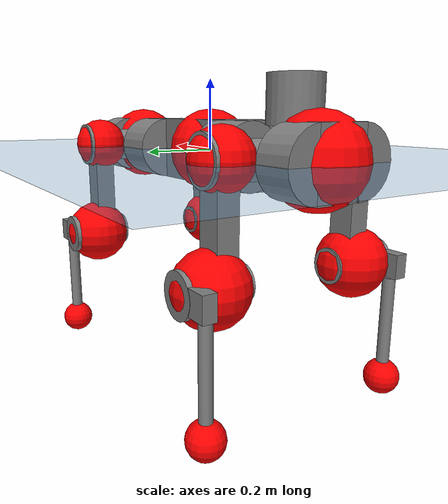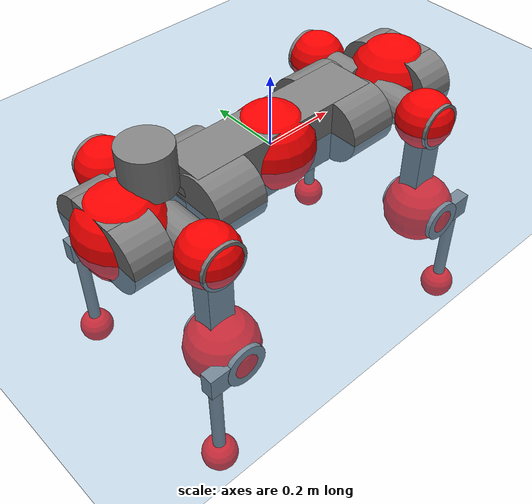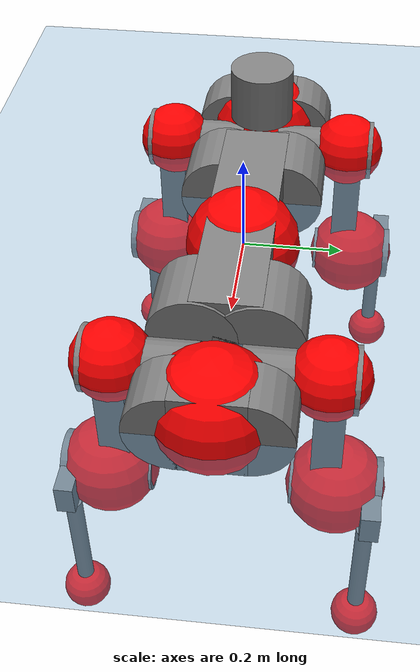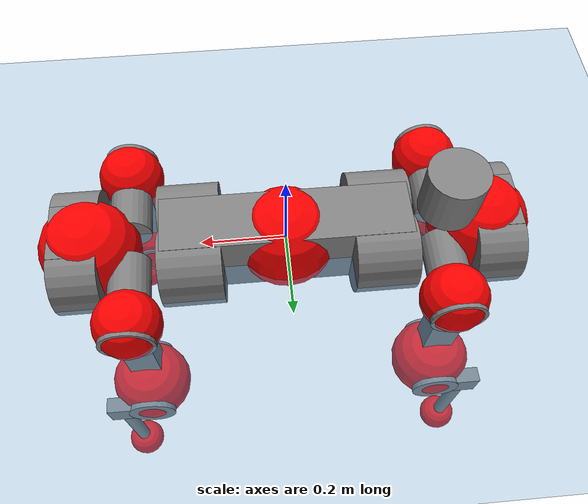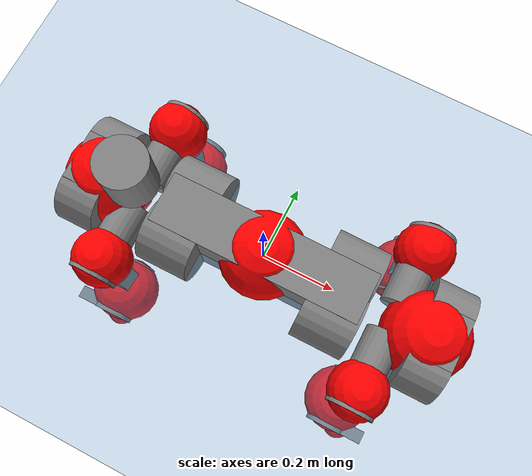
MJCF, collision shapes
<mujoco model="anymal_c">
  <compiler angle="radian" assetdir="assets" balanceinertia="true" inertiafromgeom="false"/>

  <option timestep="0.005" density="1.2" viscosity="2e-05"/>

  <size nkey="1"/>

  <visual>
    <quality shadowsize="8192"/>
    <map shadowclip="0.5"/>
  </visual>

  <default>
    <default class="/">
      <material specular="0" shininess="0.25"/>
      <geom contype="0" conaffinity="0" group="1" solref="-1000 -80"/>
      <site size="0.01 0.005 0.005" group="5"/>
      <general forcelimited="true" forcerange="-80 80" biastype="affine" gainprm="80" biasprm="0 -80 -2"/>
      <default class="anymal_c">
        <joint armature="0.01" damping="0.01" frictionloss="0.1"/>
        <default class="visual">
          <geom type="mesh" group="2"/>
          <default class="visual_zflip"/>
        </default>
        <default class="collision">
          <geom type="cylinder" group="3"/>
          <default class="foot">
            <geom size="0.03 0 0" type="sphere" condim="6" priority="1" friction="0.8 0.02 0.01" solimp="0.015 1 0.03"/>
          </default>
        </default>
      </default>
      <default class="reward_collision_sphere">
        <geom group="5" rgba="1 0 0 1"/>
      </default>
    </default>
  </default>

  <asset>
    <texture type="skybox" colorspace="auto" name="//unnamed_texture_0" builtin="gradient" rgb1="0.95 0.95 0.95" rgb2="0.95 0.95 0.95" width="100" height="600"/>
    <texture type="2d" colorspace="auto" name="texplane" builtin="checker" rgb1="0.345 0.575 0.748" rgb2="0.345 0.575 0.748" markrgb="1 1 1" width="512" height="512"/>
    <texture type="2d" colorspace="linear" name="base" file="base.png"/>
    <texture type="2d" colorspace="linear" name="top_shell" file="top_shell.png"/>
    <texture type="2d" colorspace="linear" name="bottom_shell" file="bottom_shell.png"/>
    <texture type="2d" colorspace="linear" name="remote" file="remote.png"/>
    <texture type="2d" colorspace="linear" name="hatch" file="hatch.png"/>
    <texture type="2d" colorspace="linear" name="handle" file="handle.png"/>
    <texture type="2d" colorspace="linear" name="face" file="face.png"/>
    <texture type="2d" colorspace="linear" name="battery" file="battery.png"/>
    <texture type="2d" colorspace="linear" name="lidar_cage" file="lidar_cage.png"/>
    <texture type="2d" colorspace="linear" name="depth_camera" file="depth_camera.png"/>
    <texture type="2d" colorspace="linear" name="wide_angle_camera" file="wide_angle_camera.png"/>
    <texture type="2d" colorspace="linear" name="lidar" file="lidar.png"/>
    <texture type="2d" colorspace="linear" name="drive" file="drive.png"/>
    <texture type="2d" colorspace="linear" name="hip_l" file="hip_l.png"/>
    <texture type="2d" colorspace="linear" name="shank_l" file="shank_l.png"/>
    <texture type="2d" colorspace="linear" name="foot" file="foot.png"/>
    <texture type="2d" colorspace="linear" name="thigh" file="thigh.png"/>
    <texture type="2d" colorspace="linear" name="shank_r" file="shank_r.png"/>
    <texture type="2d" colorspace="linear" name="hip_r" file="hip_r.png"/>
    <material name="MatPlane" class="/" texture="texplane" texuniform="true" texrepeat="2 2" specular="0.9" shininess="0.5"/>
    <material name="black_plastic" class="/" rgba="0.007 0.007 0.007 1"/>
    <material name="green" class="/" rgba="0.052 0.178 0.033 1"/>
    <material name="red" class="/" rgba="0.178 0.006 0.005 1"/>
    <material name="yellow" class="/" rgba="0.178 0.119 0.006 1"/>
    <material name="lwl" class="/" rgba="0.8 0.8 0.8 1"/>
    <material name="base" class="/" texture="base"/>
    <material name="top_shell" class="/" texture="top_shell"/>
    <material name="bottom_shell" class="/" texture="bottom_shell"/>
    <material name="hip_l" class="/" texture="hip_l"/>
    <material name="thigh" class="/" texture="thigh"/>
    <material name="shank_l" class="/" texture="shank_l"/>
    <material name="foot" class="/" texture="foot"/>
    <material name="hip_r" class="/" texture="hip_r"/>
    <material name="shank" class="/" texture="shank_r"/>
    <material name="hatch" class="/" texture="hatch"/>
    <material name="remote" class="/" texture="remote"/>
    <material name="handle" class="/" texture="handle"/>
    <material name="face" class="/" texture="face"/>
    <material name="depth_camera" class="/" texture="depth_camera"/>
    <material name="wide_angle_camera" class="/" texture="wide_angle_camera"/>
    <material name="battery" class="/" texture="battery"/>
    <material name="lidar_cage" class="/" texture="lidar_cage"/>
    <material name="lidar" class="/" texture="lidar"/>
    <material name="drive" class="/" texture="drive"/>
    <mesh name="base_0" class="/" file="base_0.obj"/>
    <mesh name="base_1" class="/" file="base_1.obj"/>
    <mesh name="base_2" class="/" file="base_2.obj"/>
    <mesh name="base_3" class="/" file="base_3.obj"/>
    <mesh name="base_4" class="/" file="base_4.obj"/>
    <mesh name="base_5" class="/" file="base_5.obj"/>
    <mesh name="top_shell" class="/" file="top_shell.obj"/>
    <mesh name="bottom_shell" class="/" file="bottom_shell.obj"/>
    <mesh name="remote" class="/" file="remote.obj"/>
    <mesh name="handle" class="/" file="handle.obj"/>
    <mesh name="face" class="/" file="face.obj"/>
    <mesh name="wide_angle_camera" class="/" file="wide_angle_camera.obj"/>
    <mesh name="depth_camera" class="/" file="depth_camera.obj"/>
    <mesh name="battery" class="/" file="battery.obj"/>
    <mesh name="lidar_cage" class="/" file="lidar_cage.obj"/>
    <mesh name="lidar" class="/" file="lidar.obj"/>
    <mesh name="drive" class="/" file="drive.obj"/>
    <mesh name="hip_l" class="/" file="hip_l.obj"/>
    <mesh name="thigh" class="/" file="thigh.obj"/>
    <mesh name="shank_l" class="/" file="shank_l.obj"/>
    <mesh name="foot" class="/" file="foot.obj"/>
    <mesh name="hip_r" class="/" file="hip_r.obj"/>
    <mesh name="hatch" class="/" file="hatch.obj"/>
    <mesh name="shank_r" class="/" file="shank_r.obj"/>
  </asset>

  <worldbody>
    <geom name="floor" class="/" size="100 100 0.125" type="plane" group="0" material="MatPlane"/>
    <light name="toplight_shadow" class="/" pos="0 0 5" dir="0.0990148 0.0990148 -0.990148" type="directional" ambient="0.04 0.04 0.04" diffuse="0.55 0.55 0.55" specular="0.12 0.12 0.12"/>
    <light name="toplight_fill" class="/" pos="0 0 5" dir="0.0990148 0.0990148 -0.990148" type="directional" castshadow="false" ambient="0.04 0.04 0.04" diffuse="0.3 0.3 0.3" specular="0.08 0.08 0.08"/>
    <body name="trunk" childclass="anymal_c" pos="-1.13921e-06 -0.000234038 0.000310662" quat="1 4.78214e-05 0.000230662 -5.61623e-05">
      <inertial pos="0.00235513 -0.000389596 0.0505325" quat="0.497041 0.500711 0.502729 0.499502" mass="17.7567" diaginertia="0.674209 0.37172 0.246248"/>
      <joint name="//unnamed_joint_0" type="free" armature="0" damping="0" frictionloss="0"/>
      <geom name="//unnamed_geom_1" class="visual" material="green" mesh="base_0"/>
      <geom name="//unnamed_geom_2" class="visual" material="yellow" mesh="base_1"/>
      <geom name="//unnamed_geom_3" class="visual" material="red" mesh="base_2"/>
      <geom name="//unnamed_geom_4" class="visual" material="black_plastic" mesh="base_3"/>
      <geom name="//unnamed_geom_5" class="visual" material="lwl" mesh="base_4"/>
      <geom name="//unnamed_geom_6" class="visual" material="base" mesh="base_5"/>
      <geom name="trunk_1" class="collision" size="0.284425 0.0686543 0.0882699" type="box"/>
      <geom name="trunk_2" class="collision" size="0.0882699 0.0711063" pos="0.220169 0.0633207 0" quat="0.707107 0 0.707107 0"/>
      <geom name="trunk_3" class="collision" size="0.0882699 0.0711063" pos="-0.220169 0.0633207 0" quat="0.707107 0 0.707107 0"/>
      <geom name="trunk_4" class="collision" size="0.0882699 0.0711063" pos="0.220169 -0.0633207 0" quat="0.707107 0 0.707107 0"/>
      <geom name="trunk_5" class="collision" size="0.0882699 0.0711063" pos="-0.220169 -0.0633207 0" quat="0.707107 0 0.707107 0"/>
      <geom name="//unnamed_geom_12" class="visual" material="top_shell" mesh="top_shell"/>
      <geom name="//unnamed_geom_13" class="visual" material="bottom_shell" mesh="bottom_shell"/>
      <geom name="//unnamed_geom_14" class="visual" material="remote" mesh="remote"/>
      <geom name="//unnamed_geom_15" class="visual" material="handle" mesh="handle"/>
      <geom name="//unnamed_geom_16" class="visual" pos="0.419586 0 0" quat="1 0 0 0" material="face" mesh="face"/>
      <geom name="trunk_6" class="collision" size="0.0539427 0.0686543 0.0882699" pos="0.475261 0 0" type="box"/>
      <geom name="//unnamed_geom_18" class="collision" size="0.0882699 0.0539427" pos="0.475261 0.0633207 0" quat="0.707107 0 0.707107 0"/>
      <geom name="//unnamed_geom_19" class="collision" size="0.0882699 0.0539427" pos="0.475261 -0.0633207 0" quat="0.707107 0 0.707107 0"/>
      <geom name="//unnamed_geom_20" class="visual" pos="0.467315 0 -0.0300443" quat="0.965926 0 0.258819 0" material="depth_camera" mesh="depth_camera"/>
      <geom name="//unnamed_geom_21" class="visual" pos="0.519295 0 0.0153514" material="wide_angle_camera" mesh="wide_angle_camera"/>
      <geom name="//unnamed_geom_22" class="visual_zflip" pos="-0.419586 0 0" quat="0 0 0 1" material="face" mesh="face"/>
      <geom name="trunk_7" class="collision" size="0.0539427 0.0686543 0.0882699" pos="-0.475261 0 0" quat="0 0 0 1" type="box"/>
      <geom name="//unnamed_geom_24" class="collision" size="0.0882699 0.0539427" pos="-0.475261 -0.0633207 0" quat="0 -0.707107 0 0.707107"/>
      <geom name="//unnamed_geom_25" class="collision" size="0.0882699 0.0539427" pos="-0.475261 0.0633207 0" quat="0 -0.707107 0 0.707107"/>
      <geom name="//unnamed_geom_26" class="visual" pos="-0.467315 0 -0.0300443" quat="0 -0.258819 0 0.965926" material="depth_camera" mesh="depth_camera"/>
      <geom name="//unnamed_geom_27" class="visual_zflip" pos="-0.519295 0 0.0153514" quat="0 0 0 1" material="wide_angle_camera" mesh="wide_angle_camera"/>
      <geom name="//unnamed_geom_28" class="visual" material="battery" mesh="battery"/>
      <geom name="//unnamed_geom_29" class="visual" pos="0 0.0677517 0.0296897" quat="0.683013 -0.183013 0.183013 0.683013" material="depth_camera" mesh="depth_camera"/>
      <geom name="//unnamed_geom_30" class="visual" pos="0 -0.0677517 0.0296897" quat="0.683013 0.183013 0.183013 -0.683013" material="depth_camera" mesh="depth_camera"/>
      <geom name="//unnamed_geom_31" class="visual" pos="-0.368466 0 0.0753726" quat="1 0 0 0" material="lidar_cage" mesh="lidar_cage"/>
      <geom name="trunk_8" class="collision" size="0.0686543 0.0588466" pos="-0.368466 0 0.136901"/>
      <geom name="//unnamed_geom_33" class="visual" pos="-0.368466 -4.23083e-05 0.145823" quat="0.707107 0 0 -0.707107" material="lidar" mesh="lidar"/>
      <geom name="//unnamed_geom_34" class="visual" pos="0.30358 0.0941194 -2.08547e-09" quat="0.258819 0.965926 0 0" material="drive" mesh="drive"/>
      <geom name="//unnamed_geom_35" class="visual" pos="0.30358 -0.0941194 2.08547e-09" quat="0.258819 -0.965926 0 0" material="drive" mesh="drive"/>
      <geom name="//unnamed_geom_36" class="visual" pos="-0.30358 0.0941194 2.08547e-09" quat="0 0 0.965926 -0.258819" material="drive" mesh="drive"/>
      <geom name="//unnamed_geom_37" class="visual" pos="-0.30358 -0.0941194 -2.08547e-09" quat="0 0 -0.965926 -0.258819" material="drive" mesh="drive"/>
      <geom name="//unnamed_geom_38" class="visual" pos="0.117423 0 0.0748598" quat="1 0 0 0" material="hatch" mesh="hatch"/>
      <geom name="//unnamed_geom_39" class="reward_collision_sphere" size="0.117693"/>
      <geom name="//unnamed_geom_40" class="reward_collision_sphere" size="0.117693" pos="0.455522 0 0"/>
      <geom name="//unnamed_geom_41" class="reward_collision_sphere" size="0.117693" pos="-0.455522 0 0"/>
      <site name="imu" pos="0.253814 0.00685219 0.0445491" size="0.00980776"/>
      <camera name="track" pos="0 -1.80916 0" quat="0.707107 0.707107 0 0" mode="trackcom"/>
      <camera name="ego_camera" pos="0.455522 0 -0.0410191" quat="-0.5 -0.5 0.5 0.5"/>
      <body name="LF_HIP" pos="0.304377 0.0943533 0.00133066" quat="0.258737 0.965948 -7.61596e-05 2.33793e-05">
        <inertial pos="0.0570879 -0.013353 -0.00851464" quat="-0.127459 0.709945 -0.135242 0.679295" mass="2.61005" diaginertia="0.00619442 0.003012 0.00373587"/>
        <joint name="LF_HAA" pos="0 0 0" axis="0.999966 0.00556689 0.00610135" range="-0.714021 0.490491" armature="0.0095671" damping="0.0125138" frictionloss="0.0946808"/>
        <geom name="//unnamed_geom_42" class="visual" pos="0 -0.000122679 2.01499e-05" quat="0.258819 -0.965926 0 0" material="hip_l" mesh="hip_l"/>
        <geom name="//unnamed_geom_43" class="visual" pos="0.060635 -0.0720973 -0.0425196" quat="0.183013 -0.683013 0.683013 0.183013" material="drive" mesh="drive"/>
        <geom name="//unnamed_geom_44" class="collision" size="0.0490388 0.0686543" pos="0.060635 -0.0108186 -0.00708092" quat="-0.353553 -0.612372 0.612372 -0.353553"/>
        <body name="LF_THIGH" pos="0.0618965 -0.0665333 -0.0426592" quat="0.182876 -0.683002 0.683107 0.182839">
          <inertial pos="0.0315267 4.65116e-05 -0.252672" quat="0.993297 -0.00233601 -0.0804796 0.0829375" mass="2.88718" diaginertia="0.0321579 0.018088 0.00473885"/>
          <joint name="LF_HFE" pos="0 0 0" axis="0.999988 -0.00462835 0.00179606" range="-3.14732 3.13922" armature="0.00960531" damping="0.0137386" frictionloss="0.102478"/>
          <geom name="//unnamed_geom_45" class="visual" pos="0.0021426 3.37623e-06 0" quat="0.707107 0 0 -0.707107" material="thigh" mesh="thigh"/>
          <geom name="//unnamed_geom_46" class="collision" size="0.0637505 0.039231" pos="0.0404908 0 0" quat="0.5 0.5 -0.5 -0.5"/>
          <geom name="//unnamed_geom_47" class="collision" size="0.0367791 0.0294233 0.138597" pos="0.0303681 0 -0.144914" quat="0.707107 0 0 -0.707107" type="box"/>
          <geom name="//unnamed_geom_48" class="visual" pos="0.101531 0 -0.292261" quat="1 0 0 0" material="drive" mesh="drive"/>
          <geom name="//unnamed_geom_49" class="collision" size="0.0490388 0.0686543" pos="0.0306718 0 -0.292261" quat="0.707107 0 0.707107 0"/>
          <geom name="//unnamed_geom_50" class="reward_collision_sphere" size="0.0784621" pos="0.0253068 0 0"/>
          <body name="LF_SHANK" pos="0.101666 -0.00125518 -0.292941" quat="1 7.00295e-06 0.000362928 -0.00023268">
            <inertial pos="0.00483827 -0.0558853 -0.0827597" quat="0.993068 -0.114613 -0.00198954 -0.0259984" mass="0.542509" diaginertia="0.0107694 0.00552254 0.00125972"/>
            <joint name="LF_KFE" pos="0 0 0" axis="1 -0.000530335 -7.17952e-07" stiffness="9.72709e-05" range="-3.13879 3.13256" armature="0.00982565" damping="0.0114344" frictionloss="0.0970475"/>
            <geom name="//unnamed_geom_51" class="visual" pos="0.000698654 0.00372526 0" quat="0.707107 0 0 -0.707107" material="shank_l" mesh="shank_l"/>
            <geom name="LF_kfe_act" class="collision" size="0.0588466 0.0196155" pos="0.0202454 0 0" quat="0.5 0.5 -0.5 -0.5"/>
            <geom name="//unnamed_geom_53" class="collision" size="0.0563937 0.0331012 0.0186347" pos="0.0202454 -0.0520125 0" quat="0.5 0.5 -0.5 -0.5" type="box"/>
            <geom name="//unnamed_geom_54" class="visual" pos="0.01321 -0.0783574 -0.346581" quat="0.382683 0 0 -0.92388" material="foot" mesh="foot"/>
            <geom name="LF_calf" class="collision" size="0.0171636 0.138537" pos="0.0132101 -0.0795579 -0.17329" quat="0.707107 0 0 -0.707107"/>
            <geom name="LF_foot" class="foot" size="0.0294805" pos="0.0132101 -0.0795579 -0.323507" quat="0.707107 0 0 -0.707107"/>
            <geom name="//unnamed_geom_57" class="reward_collision_sphere" size="0.0980776" pos="-0.0506135 0 0"/>
            <geom name="//unnamed_geom_58" class="reward_collision_sphere" size="0.0490388" pos="0.0132101 -0.0795579 -0.323507"/>
            <site name="LF_foot" class="foot" pos="0.0132101 -0.0795579 -0.323507" quat="0.707107 0 0 -0.707107" size="0.00980776"/>
          </body>
        </body>
      </body>
      <body name="RF_HIP" pos="0.30351 -0.0938117 0.000622453" quat="0.258908 -0.965902 -5.45385e-05 -0.000295313">
        <inertial pos="0.0581869 0.0143936 -0.00882907" quat="0.132762 0.677377 0.125601 0.712572" mass="2.64491" diaginertia="0.00628688 0.00303109 0.00374996"/>
        <joint name="RF_HAA" pos="0 0 0" axis="0.999998 -0.000670702 0.00160785" range="-0.499785 0.723054" armature="0.00979053" damping="0.010272" frictionloss="0.0997513"/>
        <geom name="//unnamed_geom_59" class="visual" pos="0 0.000122678 2.01499e-05" quat="0.258819 0.965926 0 0" material="hip_r" mesh="hip_r"/>
        <geom name="//unnamed_geom_60" class="visual" pos="0.060635 0.0720973 -0.0425196" quat="0.183013 0.683013 0.683013 -0.183013" material="drive" mesh="drive"/>
        <geom name="//unnamed_geom_61" class="collision" size="0.0490388 0.0686543" pos="0.060635 0.0108186 -0.00708092" quat="-0.353553 0.612372 0.612372 0.353553"/>
        <body name="RF_THIGH" pos="0.0608363 0.0661859 -0.0440344" quat="0.182742 0.683025 0.683027 -0.18318">
          <inertial pos="0.0320261 0.00102264 -0.251322" quat="0.992795 -0.00507422 -0.080152 0.0889293" mass="2.9022" diaginertia="0.0320023 0.0182013 0.0047502"/>
          <joint name="RF_HFE" pos="0 0 0" axis="0.999998 0.00140825 0.00162894" stiffness="0.00704793" range="-3.14311 3.12386" armature="0.00962468" damping="0.0101363" frictionloss="0.100305"/>
          <geom name="//unnamed_geom_62" class="visual" pos="0.0021426 3.37623e-06 0" quat="0.707107 0 0 -0.707107" material="thigh" mesh="thigh"/>
          <geom name="//unnamed_geom_63" class="collision" size="0.0637505 0.039231" pos="0.0404908 0 0" quat="0.5 0.5 0.5 0.5"/>
          <geom name="//unnamed_geom_64" class="collision" size="0.0367791 0.0294233 0.138597" pos="0.0303681 0 -0.144914" quat="0.707107 0 0 0.707107" type="box"/>
          <geom name="//unnamed_geom_65" class="visual" pos="0.101531 0 -0.292261" quat="1 0 0 0" material="drive" mesh="drive"/>
          <geom name="//unnamed_geom_66" class="collision" size="0.0490388 0.0686543" pos="0.0306718 0 -0.292261" quat="0.707107 0 0.707107 0"/>
          <geom name="//unnamed_geom_67" class="reward_collision_sphere" size="0.0784621" pos="0.0253068 0 0"/>
          <body name="RF_SHANK" pos="0.10099 0.000328986 -0.29267" quat="1 0.000145842 -0.000119695 0.000357477">
            <inertial pos="0.00695013 0.0563554 -0.0828066" quat="0.993171 0.113885 -0.00139718 0.0252803" mass="0.555629" diaginertia="0.0106656 0.00556251 0.00127678"/>
            <joint name="RF_KFE" pos="0 0 0" axis="0.999999 -0.00157747 0.000182726" range="-3.13998 3.14319" armature="0.00991532" damping="0.00950629" frictionloss="0.0976399"/>
            <geom name="//unnamed_geom_68" class="visual" pos="0.00069865 -0.00372525 0" quat="0.707107 0 0 0.707107" material="shank" mesh="shank_r"/>
            <geom name="RF_kfe_act" class="collision" size="0.0588466 0.0196155" pos="0.0202454 0 0" quat="0.5 0.5 0.5 0.5"/>
            <geom name="//unnamed_geom_70" class="collision" size="0.0563937 0.0331012 0.0186347" pos="0.0202454 0.0520125 0" quat="0.5 0.5 0.5 0.5" type="box"/>
            <geom name="//unnamed_geom_71" class="visual" pos="0.0132103 0.0783574 -0.346581" quat="0.382683 0 0 0.92388" material="foot" mesh="foot"/>
            <geom name="RF_calf" class="collision" size="0.0171636 0.138537" pos="0.0132101 0.0795579 -0.17329" quat="0.707107 0 0 0.707107"/>
            <geom name="RF_foot" class="foot" size="0.0298782" pos="0.0132101 0.0795579 -0.323507" quat="0.707107 0 0 0.707107"/>
            <geom name="//unnamed_geom_74" class="reward_collision_sphere" size="0.0980776" pos="-0.0506135 0 0"/>
            <geom name="//unnamed_geom_75" class="reward_collision_sphere" size="0.0490388" pos="0.0132101 0.0795579 -0.323507"/>
            <site name="RF_foot" class="foot" pos="0.0132101 0.0795579 -0.323507" quat="0.707107 0 0 0.707107" size="0.00980776"/>
          </body>
        </body>
      </body>
      <body name="LH_HIP" pos="-0.301715 0.09464 0.000541571" quat="5.00855e-05 2.09516e-05 0.965883 -0.258977">
        <inertial pos="0.0579555 0.0125118 -0.00870735" quat="0.135354 0.679127 0.12721 0.710129" mass="2.64937" diaginertia="0.00620344 0.00298852 0.00374787"/>
        <joint name="LH_HAA" pos="0 0 0" axis="0.999997 -0.00124033 -0.00193447" range="-0.511191 0.71604" armature="0.00981628" damping="0.00929296" frictionloss="0.0979815"/>
        <geom name="//unnamed_geom_76" class="visual" pos="0 0.000122678 2.01499e-05" quat="-0.258819 -0.965926 0 0" material="hip_r" mesh="hip_r"/>
        <geom name="//unnamed_geom_77" class="visual" pos="0.060635 0.0720973 -0.0425196" quat="0.183013 0.683013 0.683013 -0.183013" material="drive" mesh="drive"/>
        <geom name="//unnamed_geom_78" class="collision" size="0.0490388 0.0686543" pos="0.060635 0.0108186 -0.00708092" quat="-0.353553 0.612372 0.612372 0.353553"/>
        <body name="LH_THIGH" pos="0.0593995 0.0651821 -0.0438217" quat="0.182997 0.683018 0.683015 -0.183001">
          <inertial pos="0.0317547 0.000442857 -0.252097" quat="0.992662 -0.00806639 -0.0806231 0.0897595" mass="2.88579" diaginertia="0.0321792 0.017857 0.00464453"/>
          <joint name="LH_HFE" pos="0 0 0" axis="0.999999 -0.000838231 0.000886621" range="-3.15894 3.12156" armature="0.00991761" damping="0.00862213" frictionloss="0.0965803"/>
          <geom name="//unnamed_geom_79" class="visual" pos="0.0021426 3.37623e-06 0" quat="0.707107 0 0 -0.707107" material="thigh" mesh="thigh"/>
          <geom name="//unnamed_geom_80" class="collision" size="0.0637505 0.039231" pos="0.0404908 0 0" quat="0.5 0.5 -0.5 -0.5"/>
          <geom name="//unnamed_geom_81" class="collision" size="0.0367791 0.0294233 0.138597" pos="0.0303681 0 -0.144914" quat="0.707107 0 0 -0.707107" type="box"/>
          <geom name="//unnamed_geom_82" class="visual" pos="0.101531 0 -0.292261" quat="1 0 0 0" material="drive" mesh="drive"/>
          <geom name="//unnamed_geom_83" class="collision" size="0.0490388 0.0686543" pos="0.0306718 0 -0.292261" quat="0.707107 0 0.707107 0"/>
          <geom name="//unnamed_geom_84" class="reward_collision_sphere" size="0.0784621" pos="0.0253068 0 0"/>
          <body name="LH_SHANK" pos="0.102386 -0.00118042 -0.293387" quat="1 -2.40749e-05 -0.000240342 0.000549767">
            <inertial pos="0.00537833 0.0552884 -0.0815119" quat="0.992945 0.114981 -0.00343527 0.0287871" mass="0.553874" diaginertia="0.0107876 0.00563289 0.00127017"/>
            <joint name="LH_KFE" pos="0 0 0" axis="0.999989 -0.004363 -0.0015992" range="-3.13463 3.15864" armature="0.0100645" damping="0.00992679" frictionloss="0.100987"/>
            <geom name="//unnamed_geom_85" class="visual" pos="0.00069865 -0.00372525 0" quat="-0.707107 0 0 -0.707107" material="shank" mesh="shank_r"/>
            <geom name="LH_kfe_act" class="collision" size="0.0588466 0.0196155" pos="0.0202454 0 0" quat="0.5 0.5 -0.5 -0.5"/>
            <geom name="//unnamed_geom_87" class="collision" size="0.0563937 0.0331012 0.0186347" pos="0.0202454 0.0520125 0" quat="0.5 0.5 -0.5 -0.5" type="box"/>
            <geom name="//unnamed_geom_88" class="visual" pos="0.0132103 0.0783574 -0.346581" quat="-0.382683 0 0 -0.92388" material="foot" mesh="foot"/>
            <geom name="LH_calf" class="collision" size="0.0171636 0.138537" pos="0.0132101 0.0795579 -0.17329" quat="0.707107 0 0 -0.707107"/>
            <geom name="LH_foot" class="foot" size="0.0314959" pos="0.0132101 0.0795579 -0.323507" quat="0.707107 0 0 -0.707107"/>
            <geom name="//unnamed_geom_91" class="reward_collision_sphere" size="0.0980776" pos="-0.0506135 0 0"/>
            <geom name="//unnamed_geom_92" class="reward_collision_sphere" size="0.0490388" pos="0.0132101 0.0795579 -0.323507"/>
            <site name="LH_foot" class="foot" pos="0.0132101 0.0795579 -0.323507" quat="0.707107 0 0 -0.707107" size="0.00980776"/>
          </body>
        </body>
      </body>
      <body name="RH_HIP" pos="-0.304105 -0.0941824 -9.3385e-05" quat="6.75821e-05 0.000137889 -0.965955 -0.258712">
        <inertial pos="0.0566012 -0.0147059 -0.00879361" quat="-0.126693 0.708351 -0.135653 0.681018" mass="2.60913" diaginertia="0.00612316 0.00292981 0.00366944"/>
        <joint name="RH_HAA" pos="0 0 0" axis="0.999988 0.00497261 0.000169254" range="-0.720623 0.492625" armature="0.00975185" damping="0.00738742" frictionloss="0.0989104"/>
        <geom name="//unnamed_geom_93" class="visual" pos="0 -0.000122679 2.01499e-05" quat="-0.258819 0.965926 0 0" material="hip_l" mesh="hip_l"/>
        <geom name="//unnamed_geom_94" class="visual" pos="0.060635 -0.0720973 -0.0425196" quat="-0.183013 0.683013 -0.683013 -0.183013" material="drive" mesh="drive"/>
        <geom name="//unnamed_geom_95" class="collision" size="0.0490388 0.0686543" pos="0.060635 -0.0108186 -0.00708092" quat="0.353553 0.612372 -0.612372 0.353553"/>
        <body name="RH_THIGH" pos="0.0608531 -0.0654798 -0.0431326" quat="-0.182991 0.68299 -0.683054 -0.182965">
          <inertial pos="0.0317959 0.000253457 -0.251617" quat="0.992638 -0.0045432 -0.0848421 0.0863234" mass="2.88582" diaginertia="0.0322842 0.0180582 0.00481517"/>
          <joint name="RH_HFE" pos="0 0 0" axis="0.999996 -0.00287933 0.000483085" range="-3.13607 3.13852" armature="0.00966115" damping="0.0064903" frictionloss="0.10168"/>
          <geom name="//unnamed_geom_96" class="visual" pos="0.0021426 3.37623e-06 0" quat="0.707107 0 0 -0.707107" material="thigh" mesh="thigh"/>
          <geom name="//unnamed_geom_97" class="collision" size="0.0637505 0.039231" pos="0.0404908 0 0" quat="0.5 0.5 0.5 0.5"/>
          <geom name="//unnamed_geom_98" class="collision" size="0.0367791 0.0294233 0.138597" pos="0.0303681 0 -0.144914" quat="0.707107 0 0 0.707107" type="box"/>
          <geom name="//unnamed_geom_99" class="visual" pos="0.101531 0 -0.292261" quat="1 0 0 0" material="drive" mesh="drive"/>
          <geom name="//unnamed_geom_100" class="collision" size="0.0490388 0.0686543" pos="0.0306718 0 -0.292261" quat="0.707107 0 0.707107 0"/>
          <geom name="//unnamed_geom_101" class="reward_collision_sphere" size="0.0784621" pos="0.0253068 0 0"/>
          <body name="RH_SHANK" pos="0.100938 0.000461056 -0.292429" quat="1 -0.000150458 4.88998e-05 0.000247981">
            <inertial pos="0.00570775 -0.0559893 -0.0823734" quat="0.992814 -0.116997 -0.00200533 -0.0250595" mass="0.55429" diaginertia="0.010948 0.00559481 0.00127243"/>
            <joint name="RH_KFE" pos="0 0 0" axis="0.999994 -0.00197191 -0.00271634" range="-3.13531 3.14283" armature="0.00981274" damping="0.0111298" frictionloss="0.100601"/>
            <geom name="//unnamed_geom_102" class="visual" pos="0.000698654 0.00372526 0" quat="0.707107 0 0 -0.707107" material="shank_l" mesh="shank_l"/>
            <geom name="RH_kfe_act" class="collision" size="0.0588466 0.0196155" pos="0.0202454 0 0" quat="0.5 0.5 0.5 0.5"/>
            <geom name="//unnamed_geom_104" class="collision" size="0.0563937 0.0331012 0.0186347" pos="0.0202454 -0.0520125 0" quat="0.5 0.5 0.5 0.5" type="box"/>
            <geom name="//unnamed_geom_105" class="visual" pos="0.01321 -0.0783574 -0.346581" quat="0.382683 0 0 -0.92388" material="foot" mesh="foot"/>
            <geom name="RH_calf" class="collision" size="0.0171636 0.138537" pos="0.0132101 -0.0795579 -0.17329" quat="0.707107 0 0 0.707107"/>
            <geom name="RH_foot" class="foot" size="0.027391" pos="0.0132101 -0.0795579 -0.323507" quat="0.707107 0 0 0.707107"/>
            <geom name="//unnamed_geom_108" class="reward_collision_sphere" size="0.0980776" pos="-0.0506135 0 0"/>
            <geom name="//unnamed_geom_109" class="reward_collision_sphere" size="0.0490388" pos="0.0132101 -0.0795579 -0.323507"/>
            <site name="RH_foot" class="foot" pos="0.0132101 -0.0795579 -0.323507" quat="0.707107 0 0 0.707107" size="0.00980776"/>
          </body>
        </body>
      </body>
    </body>
  </worldbody>

  <contact>
    <pair class="/" geom1="floor" geom2="LF_foot" name="//unnamed_contact_0"/>
    <pair class="/" geom1="floor" geom2="RF_foot" name="//unnamed_contact_1"/>
    <pair class="/" geom1="floor" geom2="LH_foot" name="//unnamed_contact_2"/>
    <pair class="/" geom1="floor" geom2="RH_foot" name="//unnamed_contact_3"/>
  </contact>

  <actuator>
    <general name="LF_HAA" class="/" joint="LF_HAA" forcerange="-79.3415 79.3415" gainprm="79.1416" biasprm="0 -79.1416 -1.8865"/>
    <general name="LF_HFE" class="/" joint="LF_HFE" forcerange="-79.6382 79.6382" gainprm="79.1416" biasprm="0 -79.1416 -1.8865"/>
    <general name="LF_KFE" class="/" joint="LF_KFE" forcerange="-76.9434 76.9434" gainprm="79.1416" biasprm="0 -79.1416 -1.8865"/>
    <general name="RF_HAA" class="/" joint="RF_HAA" forcerange="-78.6713 78.6713" gainprm="79.1416" biasprm="0 -79.1416 -1.8865"/>
    <general name="RF_HFE" class="/" joint="RF_HFE" forcerange="-81.1703 81.1703" gainprm="79.1416" biasprm="0 -79.1416 -1.8865"/>
    <general name="RF_KFE" class="/" joint="RF_KFE" forcerange="-75.9205 75.9205" gainprm="79.1416" biasprm="0 -79.1416 -1.8865"/>
    <general name="LH_HAA" class="/" joint="LH_HAA" forcerange="-79.1865 79.1865" gainprm="79.1416" biasprm="0 -79.1416 -1.8865"/>
    <general name="LH_HFE" class="/" joint="LH_HFE" forcerange="-76.1796 76.1796" gainprm="79.1416" biasprm="0 -79.1416 -1.8865"/>
    <general name="LH_KFE" class="/" joint="LH_KFE" forcerange="-81.3797 81.3797" gainprm="79.1416" biasprm="0 -79.1416 -1.8865"/>
    <general name="RH_HAA" class="/" joint="RH_HAA" forcerange="-78.9958 78.9958" gainprm="79.1416" biasprm="0 -79.1416 -1.8865"/>
    <general name="RH_HFE" class="/" joint="RH_HFE" forcerange="-78.7392 78.7392" gainprm="79.1416" biasprm="0 -79.1416 -1.8865"/>
    <general name="RH_KFE" class="/" joint="RH_KFE" forcerange="-76.1488 76.1488" gainprm="79.1416" biasprm="0 -79.1416 -1.8865"/>
  </actuator>

  <sensor>
    <gyro site="imu" name="imu_angular_velocity"/>
    <velocimeter site="imu" name="imu_linear_velocity"/>
    <framelinvel objtype="site" objname="LF_foot" name="LF_foot_global_linear_velocity"/>
    <framelinvel objtype="site" objname="RF_foot" name="RF_foot_global_linear_velocity"/>
    <framelinvel objtype="site" objname="LH_foot" name="LH_foot_global_linear_velocity"/>
    <framelinvel objtype="site" objname="RH_foot" name="RH_foot_global_linear_velocity"/>
  </sensor>

  <keyframe>
    <key name="home" qpos="0 0 0.55 1 0 0 0 0 0.4 -0.8 0 -0.4 0.8 0 -0.4 0.8 0 0.4 -0.8"/>
  </keyframe>
</mujoco>
